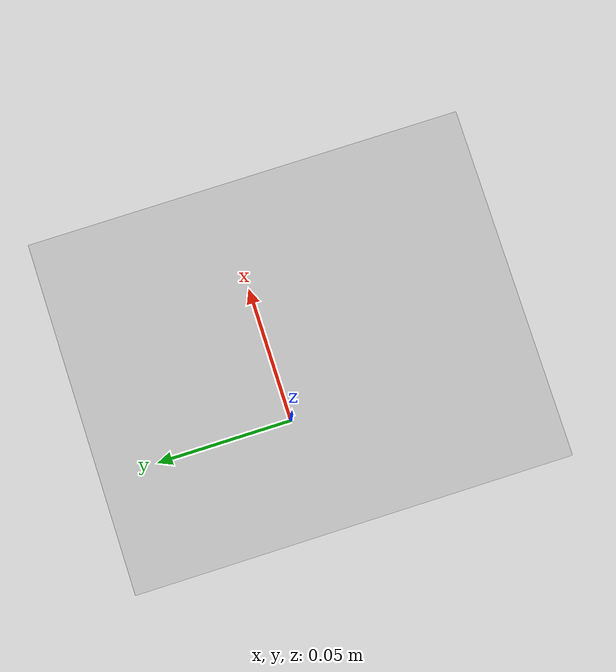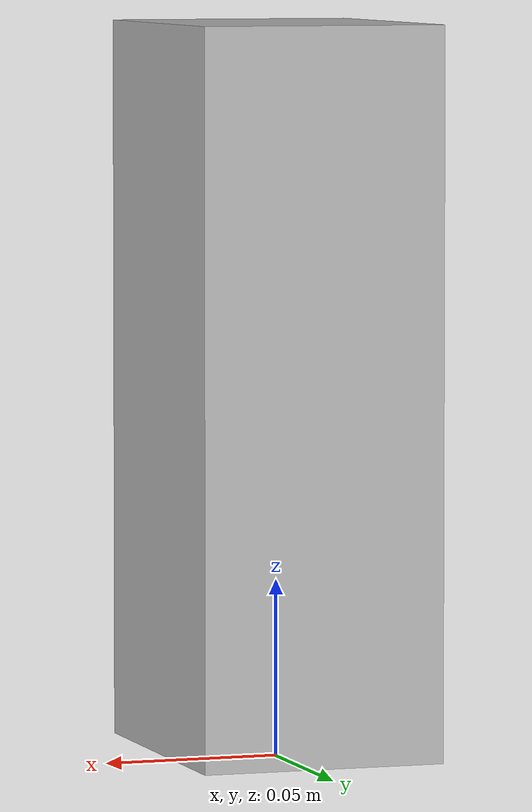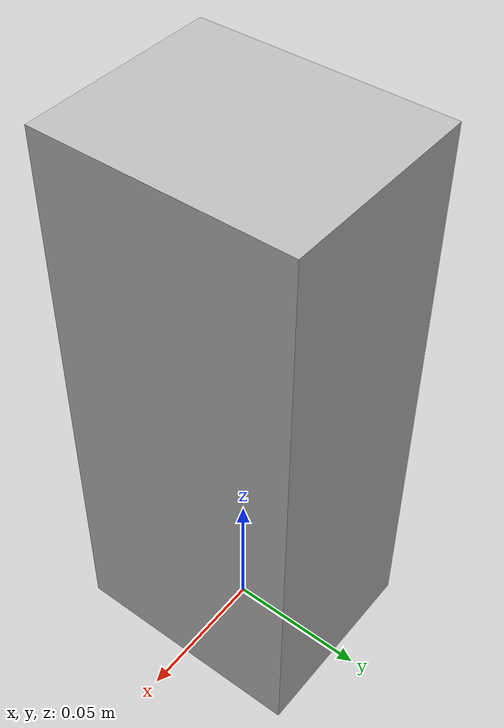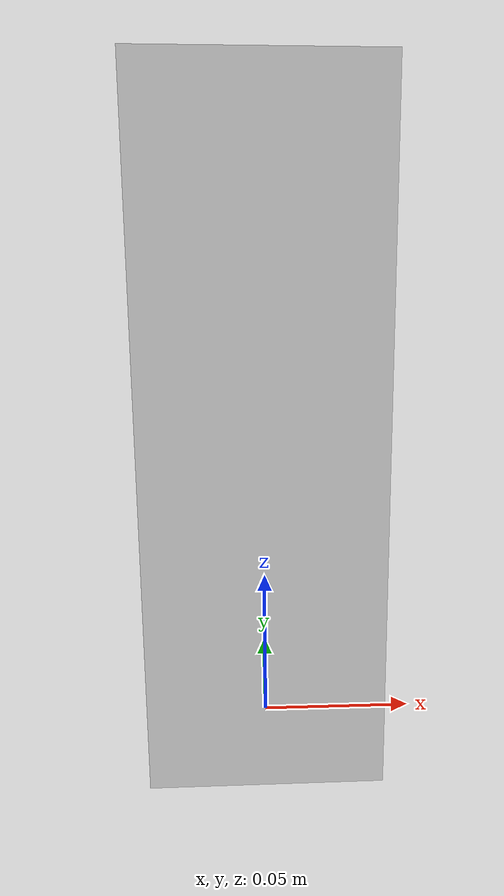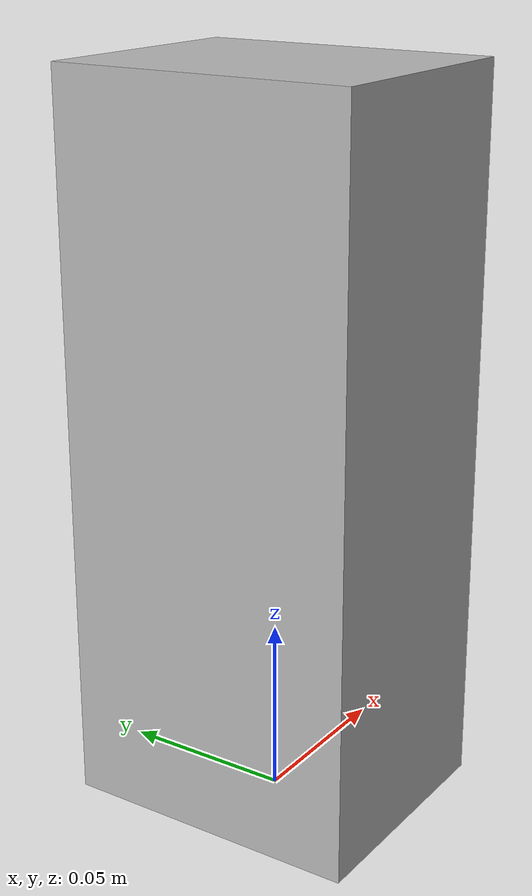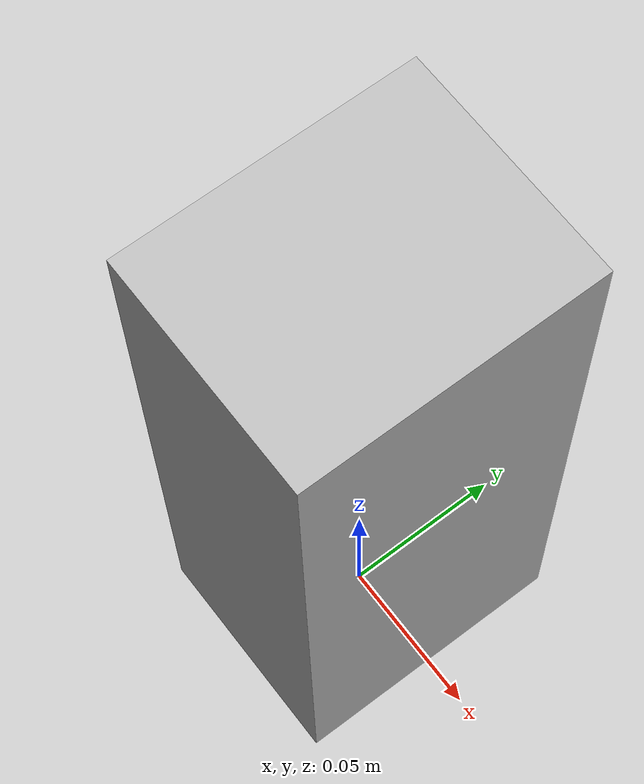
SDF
<?xml version='1.0'?>
<sdf version='1.6'>
  <model name='figurine_3'>
    <link name='link_4'>
        <inertial>
          <pose frame=''>0 0 0 0 0 0</pose>
        <mass>0.25</mass>
        <inertia>
          <ixx>0.000107436595333</ixx>
          <ixy>0.0</ixy>
          <ixz>0.0</ixz>
          <iyy>0.000101389072521</iyy>
          <iyz>0.0</iyz>
          <izz>1.74036511875e-05</izz>
        </inertia>
      </inertial>

     <visual name='visual_1'>
      <geometry>
          <mesh>
            <uri>model://figurine_3/meshes/model_scaled_v3.dae</uri>
            <scale>1 1 1</scale>
          </mesh>
        </geometry>

        <cast_shadows>1</cast_shadows>
        <transparency>0</transparency>
      </visual>
      <collision name='collision_1'>
        <laser_retro>0</laser_retro>
        <max_contacts>10</max_contacts>
        <pose frame=''>0 0 0 0 -0 0</pose>
        <geometry>
          <mesh>
            <uri>model://figurine_3/meshes/model.stl</uri>
            <scale>1 1 1</scale>
          </mesh>
        </geometry>
        </collision>
    </link>

    <static>0</static>
    <allow_auto_disable>1</allow_auto_disable>
  </model>
</sdf>
